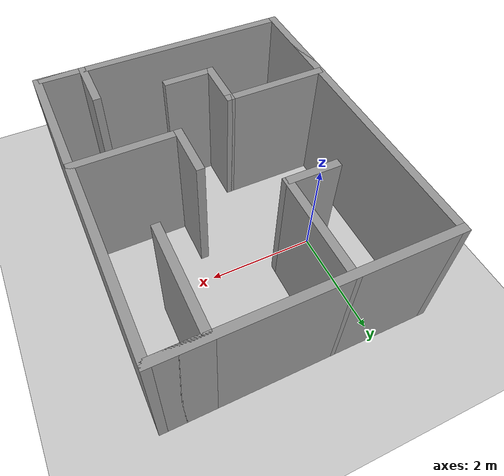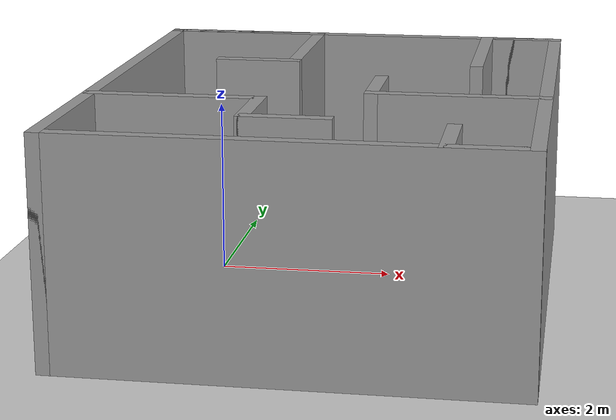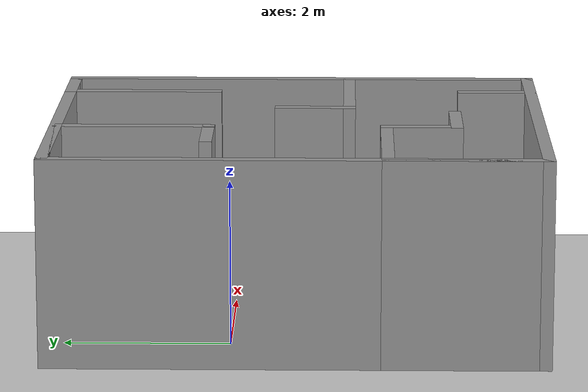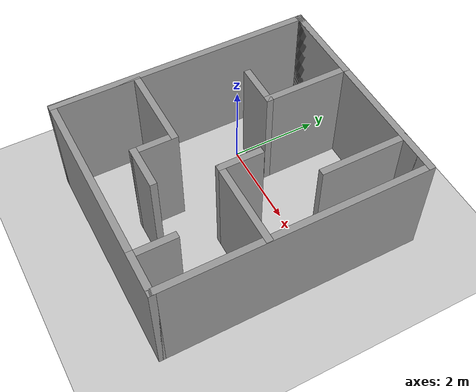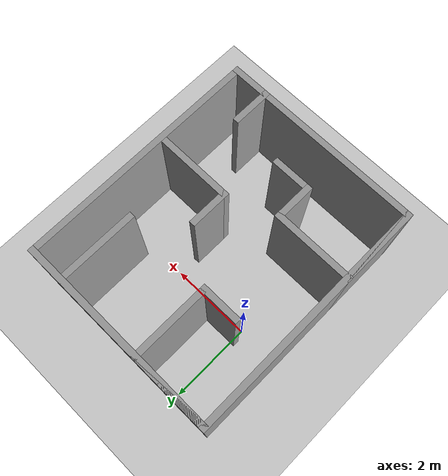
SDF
<sdf version="1.6">
 <world name="default">
  <light name="sun" type="directional">
   <pose>0 0 10 0 -0 0</pose>
   <diffuse>0.8 0.8 0.8 1</diffuse>
   <specular>0.2 0.2 0.2 1</specular>
   <attenuation>
    <range>1000</range>
    <constant>0.9</constant>
    <linear>0.01</linear>
    <quadratic>0.001</quadratic>
   </attenuation>
   <direction>-0.5 0.1 -0.9</direction>
  </light>
  <model name="ground_plane">
   <static>1</static>
   <link name="link">
    <collision name="collision">
     <geometry><plane><normal>0 0 1</normal><size>100 100</size></plane></geometry>
     <surface><friction><ode><mu>100</mu><mu2>50</mu2></ode></friction></surface>
    </collision>
    <visual name="visual">
     <cast_shadows>0</cast_shadows>
     <geometry><plane><normal>0 0 1</normal><size>100 100</size></plane></geometry>
     <material>
      <script><uri>file://media/materials/scripts/gazebo.material</uri><name>Gazebo/Grey</name></script>
     </material>
    </visual>
   </link>
  </model>
  <gravity>0 0 -9.8</gravity>
  <magnetic_field>6e-06 2.3e-05 -4.2e-05</magnetic_field>
  <atmosphere type="adiabatic"/>
  <physics name="default_physics" default="0" type="ode">
   <max_step_size>0.001</max_step_size>
   <real_time_factor>1</real_time_factor>
   <real_time_update_rate>1000</real_time_update_rate>
  </physics>
  <scene><ambient>0.4 0.4 0.4 1</ambient><background>0.7 0.7 0.7 1</background><shadows>1</shadows></scene>
  <spherical_coordinates>
   <surface_model>EARTH_WGS84</surface_model>
   <latitude_deg>0</latitude_deg>
   <longitude_deg>0</longitude_deg>
   <elevation>0</elevation>
   <heading_deg>0</heading_deg>
  </spherical_coordinates>
  <model name="building6">
   <pose>1.39836 -0.787915 0 0 -0 0</pose>
   <link name="Wall_0">
    <collision name="Wall_0_Collision">
     <geometry><box><size>5 0.15 2.5</size></box></geometry>
     <pose>0 0 1.25 0 -0 0</pose>
    </collision>
    <visual name="Wall_0_Visual">
     <pose>0 0 1.25 0 -0 0</pose>
     <geometry><box><size>5 0.15 2.5</size></box></geometry>
     <material>
      <script><uri>file://media/materials/scripts/gazebo.material</uri><name>Gazebo/Grey</name></script>
      <ambient>1 1 1 1</ambient>
     </material>
     <meta><layer>0</layer></meta>
    </visual>
    <pose>0 2.925 0 0 -0 0</pose>
   </link>
   <link name="Wall_1">
    <collision name="Wall_1_Collision">
     <geometry><box><size>6 0.15 2.5</size></box></geometry>
     <pose>0 0 1.25 0 -0 0</pose>
    </collision>
    <visual name="Wall_1_Visual">
     <pose>0 0 1.25 0 -0 0</pose>
     <geometry><box><size>6 0.15 2.5</size></box></geometry>
     <material>
      <script><uri>file://media/materials/scripts/gazebo.material</uri><name>Gazebo/Grey</name></script>
      <ambient>1 1 1 1</ambient>
     </material>
     <meta><layer>0</layer></meta>
    </visual>
    <pose>2.425 0 0 0 0 -1.5708</pose>
   </link>
   <link name="Wall_10">
    <collision name="Wall_10_Collision">
     <geometry><box><size>2 0.15 2.5</size></box></geometry>
     <pose>0 0 1.25 0 -0 0</pose>
    </collision>
    <visual name="Wall_10_Visual">
     <pose>0 0 1.25 0 -0 0</pose>
     <geometry><box><size>2 0.15 2.5</size></box></geometry>
     <material>
      <script><uri>file://media/materials/scripts/gazebo.material</uri><name>Gazebo/Grey</name></script>
      <ambient>1 1 1 1</ambient>
     </material>
     <meta><layer>0</layer></meta>
    </visual>
    <pose>1.575 2 0 0 0 -1.5708</pose>
   </link>
   <link name="Wall_12">
    <collision name="Wall_12_Collision">
     <geometry><box><size>2 0.15 2.5</size></box></geometry>
     <pose>0 0 1.25 0 -0 0</pose>
    </collision>
    <visual name="Wall_12_Visual">
     <pose>0 0 1.25 0 -0 0</pose>
     <geometry><box><size>2 0.15 2.5</size></box></geometry>
     <material>
      <script><uri>file://media/materials/scripts/gazebo.material</uri><name>Gazebo/Grey</name></script>
      <ambient>1 1 1 1</ambient>
     </material>
     <meta><layer>0</layer></meta>
    </visual>
    <pose>1.49 -0.625 0 0 -0 3.14159</pose>
   </link>
   <link name="Wall_13">
    <collision name="Wall_13_Collision">
     <geometry><box><size>1 0.15 2.5</size></box></geometry>
     <pose>0 0 1.25 0 -0 0</pose>
    </collision>
    <visual name="Wall_13_Visual">
     <pose>0 0 1.25 0 -0 0</pose>
     <geometry><box><size>1 0.15 2.5</size></box></geometry>
     <material>
      <script><uri>file://media/materials/scripts/gazebo.material</uri><name>Gazebo/Grey</name></script>
      <ambient>1 1 1 1</ambient>
     </material>
     <meta><layer>0</layer></meta>
    </visual>
    <pose>0.565 -0.2 0 0 -0 1.5708</pose>
   </link>
   <link name="Wall_15">
    <collision name="Wall_15_Collision">
     <geometry><box><size>2 0.15 2.5</size></box></geometry>
     <pose>0 0 1.25 0 -0 0</pose>
    </collision>
    <visual name="Wall_15_Visual">
     <pose>0 0 1.25 0 -0 0</pose>
     <geometry><box><size>2 0.15 2.5</size></box></geometry>
     <material>
      <script><uri>file://media/materials/scripts/gazebo.material</uri><name>Gazebo/Grey</name></script>
      <ambient>1 1 1 1</ambient>
     </material>
     <meta><layer>0</layer></meta>
    </visual>
    <pose>-2.425 -2 0 0 -0 1.5708</pose>
   </link>
   <link name="Wall_16">
    <collision name="Wall_16_Collision">
     <geometry><box><size>2 0.15 2.5</size></box></geometry>
     <pose>0 0 1.25 0 -0 0</pose>
    </collision>
    <visual name="Wall_16_Visual">
     <pose>0 0 1.25 0 -0 0</pose>
     <geometry><box><size>2 0.15 2.5</size></box></geometry>
     <material>
      <script><uri>file://media/materials/scripts/gazebo.material</uri><name>Gazebo/Grey</name></script>
      <ambient>1 1 1 1</ambient>
     </material>
     <meta><layer>0</layer></meta>
    </visual>
    <pose>-1.5 -1.075 0 0 -0 0</pose>
   </link>
   <link name="Wall_17">
    <collision name="Wall_17_Collision">
     <geometry><box><size>1 0.15 2.5</size></box></geometry>
     <pose>0 0 1.25 0 -0 0</pose>
    </collision>
    <visual name="Wall_17_Visual">
     <pose>0 0 1.25 0 -0 0</pose>
     <geometry><box><size>1 0.15 2.5</size></box></geometry>
     <material>
      <script><uri>file://media/materials/scripts/gazebo.material</uri><name>Gazebo/Grey</name></script>
      <ambient>1 1 1 1</ambient>
     </material>
     <meta><layer>0</layer></meta>
    </visual>
    <pose>-0.575 -1.5 0 0 0 -1.5708</pose>
   </link>
   <link name="Wall_19">
    <collision name="Wall_19_Collision">
     <geometry><box><size>1 0.15 2.5</size></box></geometry>
     <pose>0 0 1.25 0 -0 0</pose>
    </collision>
    <visual name="Wall_19_Visual">
     <pose>0 0 1.25 0 -0 0</pose>
     <geometry><box><size>1 0.15 2.5</size></box></geometry>
     <material>
      <script><uri>file://media/materials/scripts/gazebo.material</uri><name>Gazebo/Grey</name></script>
      <ambient>1 1 1 1</ambient>
     </material>
     <meta><layer>0</layer></meta>
    </visual>
    <pose>-0.15 -1.925 0 0 -0 0</pose>
   </link>
   <link name="Wall_2">
    <collision name="Wall_2_Collision">
     <geometry><box><size>5 0.15 2.5</size></box></geometry>
     <pose>0 0 1.25 0 -0 0</pose>
    </collision>
    <visual name="Wall_2_Visual">
     <pose>0 0 1.25 0 -0 0</pose>
     <geometry><box><size>5 0.15 2.5</size></box></geometry>
     <material>
      <script><uri>file://media/materials/scripts/gazebo.material</uri><name>Gazebo/Grey</name></script>
      <ambient>1 1 1 1</ambient>
     </material>
     <meta><layer>0</layer></meta>
    </visual>
    <pose>0 -2.925 0 0 -0 3.14159</pose>
   </link>
   <link name="Wall_23">
    <collision name="Wall_23_Collision">
     <geometry><box><size>1 0.15 2.5</size></box></geometry>
     <pose>0 0 1.25 0 -0 0</pose>
    </collision>
    <visual name="Wall_23_Visual">
     <pose>0 0 1.25 0 -0 0</pose>
     <geometry><box><size>1 0.15 2.5</size></box></geometry>
     <material>
      <script><uri>file://media/materials/scripts/gazebo.material</uri><name>Gazebo/Grey</name></script>
      <ambient>1 1 1 1</ambient>
     </material>
     <meta><layer>0</layer></meta>
    </visual>
    <pose>2 -2.925 0 0 -0 3.14159</pose>
   </link>
   <link name="Wall_24">
    <collision name="Wall_24_Collision">
     <geometry><box><size>1 0.15 2.5</size></box></geometry>
     <pose>0 0 1.25 0 -0 0</pose>
    </collision>
    <visual name="Wall_24_Visual">
     <pose>0 0 1.25 0 -0 0</pose>
     <geometry><box><size>1 0.15 2.5</size></box></geometry>
     <material>
      <script><uri>file://media/materials/scripts/gazebo.material</uri><name>Gazebo/Grey</name></script>
      <ambient>1 1 1 1</ambient>
     </material>
     <meta><layer>0</layer></meta>
    </visual>
    <pose>1.575 -2.5 0 0 -0 1.5708</pose>
   </link>
   <link name="Wall_3">
    <collision name="Wall_3_Collision">
     <geometry><box><size>6 0.15 2.5</size></box></geometry>
     <pose>0 0 1.25 0 -0 0</pose>
    </collision>
    <visual name="Wall_3_Visual">
     <pose>0 0 1.25 0 -0 0</pose>
     <geometry><box><size>6 0.15 2.5</size></box></geometry>
     <material>
      <script><uri>file://media/materials/scripts/gazebo.material</uri><name>Gazebo/Grey</name></script>
      <ambient>1 1 1 1</ambient>
     </material>
     <meta><layer>0</layer></meta>
    </visual>
    <pose>-2.425 0 0 0 -0 1.5708</pose>
   </link>
   <link name="Wall_5">
    <collision name="Wall_5_Collision">
     <geometry><box><size>2 0.15 2.5</size></box></geometry>
     <pose>0 0 1.25 0 -0 0</pose>
    </collision>
    <visual name="Wall_5_Visual">
     <pose>0 0 1.25 0 -0 0</pose>
     <geometry><box><size>2 0.15 2.5</size></box></geometry>
     <material>
      <script><uri>file://media/materials/scripts/gazebo.material</uri><name>Gazebo/Grey</name></script>
      <ambient>1 1 1 1</ambient>
     </material>
     <meta><layer>0</layer></meta>
    </visual>
    <pose>-1.5 2.925 0 0 -0 0</pose>
   </link>
   <link name="Wall_6">
    <collision name="Wall_6_Collision">
     <geometry><box><size>2 0.15 2.5</size></box></geometry>
     <pose>0 0 1.25 0 -0 0</pose>
    </collision>
    <visual name="Wall_6_Visual">
     <pose>0 0 1.25 0 -0 0</pose>
     <geometry><box><size>2 0.15 2.5</size></box></geometry>
     <material>
      <script><uri>file://media/materials/scripts/gazebo.material</uri><name>Gazebo/Grey</name></script>
      <ambient>1 1 1 1</ambient>
     </material>
     <meta><layer>0</layer></meta>
    </visual>
    <pose>-0.575 2 0 0 0 -1.5708</pose>
   </link>
   <link name="Wall_7">
    <collision name="Wall_7_Collision">
     <geometry><box><size>1 0.15 2.5</size></box></geometry>
     <pose>0 0 1.25 0 -0 0</pose>
    </collision>
    <visual name="Wall_7_Visual">
     <pose>0 0 1.25 0 -0 0</pose>
     <geometry><box><size>1 0.15 2.5</size></box></geometry>
     <material>
      <script><uri>file://media/materials/scripts/gazebo.material</uri><name>Gazebo/Grey</name></script>
      <ambient>1 1 1 1</ambient>
     </material>
     <meta><layer>0</layer></meta>
    </visual>
    <pose>-1 1.075 0 0 -0 3.14159</pose>
   </link>
   <link name="Wall_9">
    <collision name="Wall_9_Collision">
     <geometry><box><size>1 0.15 2.5</size></box></geometry>
     <pose>0 0 1.25 0 -0 0</pose>
    </collision>
    <visual name="Wall_9_Visual">
     <pose>0 0 1.25 0 -0 0</pose>
     <geometry><box><size>1 0.15 2.5</size></box></geometry>
     <material>
      <script><uri>file://media/materials/scripts/gazebo.material</uri><name>Gazebo/Grey</name></script>
      <ambient>1 1 1 1</ambient>
     </material>
     <meta><layer>0</layer></meta>
    </visual>
    <pose>2 2.925 0 0 -0 3.14159</pose>
   </link>
   <static>1</static>
  </model>
 </world>
</sdf>
